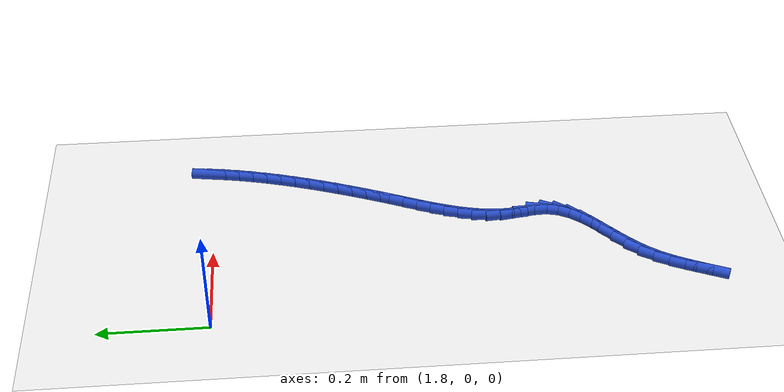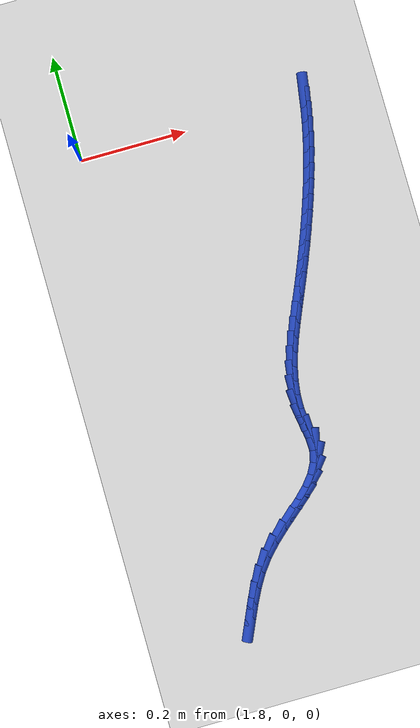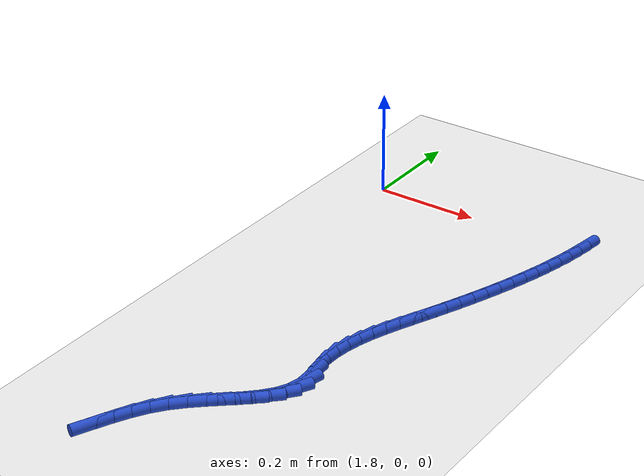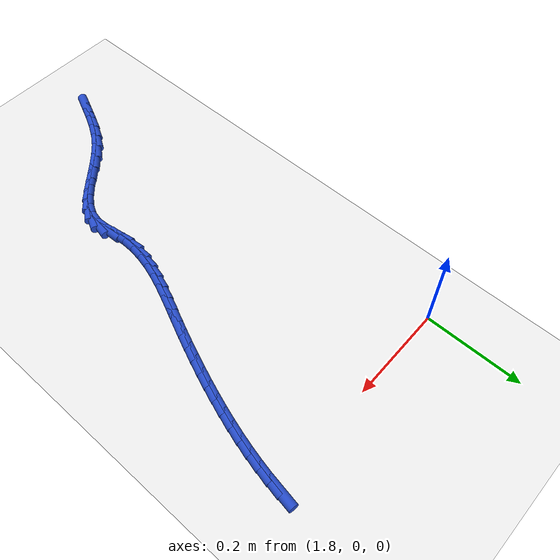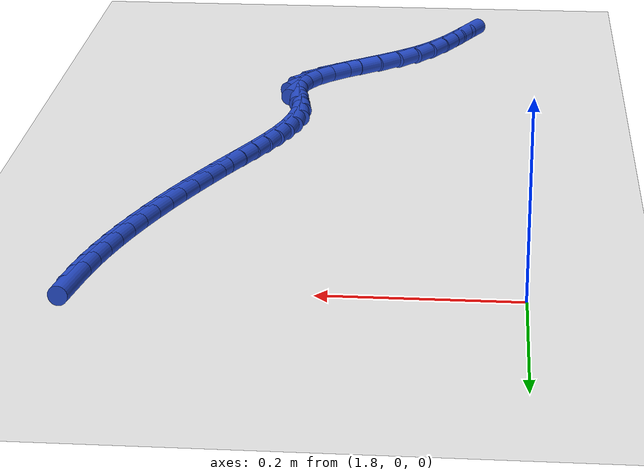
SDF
<sdf version="1.6">
 <world name="default">
  <model name="ground_plane">
   <static>1</static>
   <link name="link">
    <collision name="collision">
     <geometry><plane><normal>0 0 1</normal><size>100 100</size></plane></geometry>
     <surface><friction><ode><mu>100</mu><mu2>50</mu2></ode></friction></surface>
    </collision>
    <visual name="visual">
     <cast_shadows>0</cast_shadows>
     <geometry><plane><normal>0 0 1</normal><size>100 100</size></plane></geometry>
     <material>
      <script><uri>file://media/materials/scripts/gazebo.material</uri><name>Gazebo/WhiteGlow</name></script>
     </material>
    </visual>
   </link>
  </model>
  <model name="line">
   <link name="link_147">
    <pose>2.2294907186792656 0.0048041137044380205 0.01 0 1.57 1.4131329347840345</pose>
    <collision name="collision">
     <geometry><cylinder><radius>0.01</radius><length>0.08</length></cylinder></geometry>
    </collision>
    <visual name="visual">
     <material>
      <script><name>Gazebo/Blue</name><uri>file://media/materials/scripts/gazebo.material</uri></script>
     </material>
     <geometry><cylinder><radius>0.01</radius><length>0.08</length></cylinder></geometry>
    </visual>
   </link>
   <link name="link_148">
    <pose>2.225227168233323 -0.022013553302648974 0.01 0 1.57 1.3787885906824566</pose>
    <collision name="collision">
     <geometry><cylinder><radius>0.01</radius><length>0.08</length></cylinder></geometry>
    </collision>
    <visual name="visual">
     <material>
      <script><name>Gazebo/Blue</name><uri>file://media/materials/scripts/gazebo.material</uri></script>
     </material>
     <geometry><cylinder><radius>0.01</radius><length>0.08</length></cylinder></geometry>
    </visual>
   </link>
   <link name="link_149">
    <pose>2.219970380369202 -0.049054275825945876 0.01 0 1.57 1.3476740435328995</pose>
    <collision name="collision">
     <geometry><cylinder><radius>0.01</radius><length>0.08</length></cylinder></geometry>
    </collision>
    <visual name="visual">
     <material>
      <script><name>Gazebo/Blue</name><uri>file://media/materials/scripts/gazebo.material</uri></script>
     </material>
     <geometry><cylinder><radius>0.01</radius><length>0.08</length></cylinder></geometry>
    </visual>
   </link>
   <link name="link_150">
    <pose>2.213795934489069 -0.07626644915888862 0.01 0 1.57 1.3195082278646784</pose>
    <collision name="collision">
     <geometry><cylinder><radius>0.01</radius><length>0.08</length></cylinder></geometry>
    </collision>
    <visual name="visual">
     <material>
      <script><name>Gazebo/Blue</name><uri>file://media/materials/scripts/gazebo.material</uri></script>
     </material>
     <geometry><cylinder><radius>0.01</radius><length>0.08</length></cylinder></geometry>
    </visual>
   </link>
   <link name="link_151">
    <pose>2.2067794099950913 -0.10359846859491306 0.01 0 1.57 1.2940367109412003</pose>
    <collision name="collision">
     <geometry><cylinder><radius>0.01</radius><length>0.08</length></cylinder></geometry>
    </collision>
    <visual name="visual">
     <material>
      <script><name>Gazebo/Blue</name><uri>file://media/materials/scripts/gazebo.material</uri></script>
     </material>
     <geometry><cylinder><radius>0.01</radius><length>0.08</length></cylinder></geometry>
    </visual>
   </link>
   <link name="link_152">
    <pose>2.198996386289434 -0.1309987294274541 0.01 0 1.57 1.271032584004696</pose>
    <collision name="collision">
     <geometry><cylinder><radius>0.01</radius><length>0.08</length></cylinder></geometry>
    </collision>
    <visual name="visual">
     <material>
      <script><name>Gazebo/Blue</name><uri>file://media/materials/scripts/gazebo.material</uri></script>
     </material>
     <geometry><cylinder><radius>0.01</radius><length>0.08</length></cylinder></geometry>
    </visual>
   </link>
   <link name="link_153">
    <pose>2.1905224427742653 -0.15841562694994948 0.01 0 1.57 1.2502961432900745</pose>
    <collision name="collision">
     <geometry><cylinder><radius>0.01</radius><length>0.08</length></cylinder></geometry>
    </collision>
    <visual name="visual">
     <material>
      <script><name>Gazebo/Blue</name><uri>file://media/materials/scripts/gazebo.material</uri></script>
     </material>
     <geometry><cylinder><radius>0.01</radius><length>0.08</length></cylinder></geometry>
    </visual>
   </link>
   <link name="link_154">
    <pose>2.1814331588517515 -0.18579755645583407 0.01 0 1.57 1.2316539185993123</pose>
    <collision name="collision">
     <geometry><cylinder><radius>0.01</radius><length>0.08</length></cylinder></geometry>
    </collision>
    <visual name="visual">
     <material>
      <script><name>Gazebo/Blue</name><uri>file://media/materials/scripts/gazebo.material</uri></script>
     </material>
     <geometry><cylinder><radius>0.01</radius><length>0.08</length></cylinder></geometry>
    </visual>
   </link>
   <link name="link_155">
    <pose>2.171804113924061 -0.21309291323854382 0.01 0 1.57 1.2149574339901708</pose>
    <collision name="collision">
     <geometry><cylinder><radius>0.01</radius><length>0.08</length></cylinder></geometry>
    </collision>
    <visual name="visual">
     <material>
      <script><name>Gazebo/Blue</name><uri>file://media/materials/scripts/gazebo.material</uri></script>
     </material>
     <geometry><cylinder><radius>0.01</radius><length>0.08</length></cylinder></geometry>
    </visual>
   </link>
   <link name="link_156">
    <pose>2.161710887393358 -0.24025009259151445 0.01 0 1.57 1.200081963238884</pose>
    <collision name="collision">
     <geometry><cylinder><radius>0.01</radius><length>0.08</length></cylinder></geometry>
    </collision>
    <visual name="visual">
     <material>
      <script><name>Gazebo/Blue</name><uri>file://media/materials/scripts/gazebo.material</uri></script>
     </material>
     <geometry><cylinder><radius>0.01</radius><length>0.08</length></cylinder></geometry>
    </visual>
   </link>
   <link name="link_157">
    <pose>2.1512290586618112 -0.26721748980818194 0.01 0 1.57 1.1869254621324785</pose>
    <collision name="collision">
     <geometry><cylinder><radius>0.01</radius><length>0.08</length></cylinder></geometry>
    </collision>
    <visual name="visual">
     <material>
      <script><name>Gazebo/Blue</name><uri>file://media/materials/scripts/gazebo.material</uri></script>
     </material>
     <geometry><cylinder><radius>0.01</radius><length>0.08</length></cylinder></geometry>
    </visual>
   </link>
   <link name="link_158">
    <pose>2.1404342071315874 -0.2939435001819821 0.01 0 1.57 1.1754078111713064</pose>
    <collision name="collision">
     <geometry><cylinder><radius>0.01</radius><length>0.08</length></cylinder></geometry>
    </collision>
    <visual name="visual">
     <material>
      <script><name>Gazebo/Blue</name><uri>file://media/materials/scripts/gazebo.material</uri></script>
     </material>
     <geometry><cylinder><radius>0.01</radius><length>0.08</length></cylinder></geometry>
    </visual>
   </link>
   <link name="link_159">
    <pose>2.1294019122048535 -0.32037651900635084 0.01 0 1.57 1.1654704789290178</pose>
    <collision name="collision">
     <geometry><cylinder><radius>0.01</radius><length>0.08</length></cylinder></geometry>
    </collision>
    <visual name="visual">
     <material>
      <script><name>Gazebo/Blue</name><uri>file://media/materials/scripts/gazebo.material</uri></script>
     </material>
     <geometry><cylinder><radius>0.01</radius><length>0.08</length></cylinder></geometry>
    </visual>
   </link>
   <link name="link_160">
    <pose>2.1182077532837753 -0.346464941574724 0.01 0 1.57 1.1590778142166358</pose>
    <collision name="collision">
     <geometry><cylinder><radius>0.01</radius><length>0.08</length></cylinder></geometry>
    </collision>
    <visual name="visual">
     <material>
      <script><name>Gazebo/Blue</name><uri>file://media/materials/scripts/gazebo.material</uri></script>
     </material>
     <geometry><cylinder><radius>0.01</radius><length>0.08</length></cylinder></geometry>
    </visual>
   </link>
   <link name="link_161">
    <pose>2.106977629930485 -0.37218223865339406 0.01 0 1.57 1.1650571197149426</pose>
    <collision name="collision">
     <geometry><cylinder><radius>0.01</radius><length>0.08</length></cylinder></geometry>
    </collision>
    <visual name="visual">
     <material>
      <script><name>Gazebo/Blue</name><uri>file://media/materials/scripts/gazebo.material</uri></script>
     </material>
     <geometry><cylinder><radius>0.01</radius><length>0.08</length></cylinder></geometry>
    </visual>
   </link>
   <link name="link_162">
    <pose>2.09605448634656 -0.3976100383946567 0.01 0 1.57 1.1863670223299776</pose>
    <collision name="collision">
     <geometry><cylinder><radius>0.01</radius><length>0.08</length></cylinder></geometry>
    </collision>
    <visual name="visual">
     <material>
      <script><name>Gazebo/Blue</name><uri>file://media/materials/scripts/gazebo.material</uri></script>
     </material>
     <geometry><cylinder><radius>0.01</radius><length>0.08</length></cylinder></geometry>
    </visual>
   </link>
   <link name="link_163">
    <pose>2.0858397727250386 -0.42285912357594885 0.01 0 1.57 1.2238486611384698</pose>
    <collision name="collision">
     <geometry><cylinder><radius>0.01</radius><length>0.08</length></cylinder></geometry>
    </collision>
    <visual name="visual">
     <material>
      <script><name>Gazebo/Blue</name><uri>file://media/materials/scripts/gazebo.material</uri></script>
     </material>
     <geometry><cylinder><radius>0.01</radius><length>0.08</length></cylinder></geometry>
    </visual>
   </link>
   <link name="link_164">
    <pose>2.076734940120383 -0.44804027740397256 0.01 0 1.57 1.278383283045282</pose>
    <collision name="collision">
     <geometry><cylinder><radius>0.01</radius><length>0.08</length></cylinder></geometry>
    </collision>
    <visual name="visual">
     <material>
      <script><name>Gazebo/Blue</name><uri>file://media/materials/scripts/gazebo.material</uri></script>
     </material>
     <geometry><cylinder><radius>0.01</radius><length>0.08</length></cylinder></geometry>
    </visual>
   </link>
   <link name="link_165">
    <pose>2.0691414395870598 -0.47326428308543006 0.01 0 1.57 1.3505792720783232</pose>
    <collision name="collision">
     <geometry><cylinder><radius>0.01</radius><length>0.08</length></cylinder></geometry>
    </collision>
    <visual name="visual">
     <material>
      <script><name>Gazebo/Blue</name><uri>file://media/materials/scripts/gazebo.material</uri></script>
     </material>
     <geometry><cylinder><radius>0.01</radius><length>0.08</length></cylinder></geometry>
    </visual>
   </link>
   <link name="link_166">
    <pose>2.0634607221795322 -0.49864192382702316 0.01 0 1.57 1.4402553750472191</pose>
    <collision name="collision">
     <geometry><cylinder><radius>0.01</radius><length>0.08</length></cylinder></geometry>
    </collision>
    <visual name="visual">
     <material>
      <script><name>Gazebo/Blue</name><uri>file://media/materials/scripts/gazebo.material</uri></script>
     </material>
     <geometry><cylinder><radius>0.01</radius><length>0.08</length></cylinder></geometry>
    </visual>
   </link>
   <link name="link_167">
    <pose>2.0600942389522654 -0.524283982835454 0.01 0 1.57 1.5457874559268951</pose>
    <collision name="collision">
     <geometry><cylinder><radius>0.01</radius><length>0.08</length></cylinder></geometry>
    </collision>
    <visual name="visual">
     <material>
      <script><name>Gazebo/Blue</name><uri>file://media/materials/scripts/gazebo.material</uri></script>
     </material>
     <geometry><cylinder><radius>0.01</radius><length>0.08</length></cylinder></geometry>
    </visual>
   </link>
   <link name="link_168">
    <pose>2.0594434409597238 -0.5503012433174244 0.01 0 1.57 -1.478311323004696</pose>
    <collision name="collision">
     <geometry><cylinder><radius>0.01</radius><length>0.08</length></cylinder></geometry>
    </collision>
    <visual name="visual">
     <material>
      <script><name>Gazebo/Blue</name><uri>file://media/materials/scripts/gazebo.material</uri></script>
     </material>
     <geometry><cylinder><radius>0.01</radius><length>0.08</length></cylinder></geometry>
    </visual>
   </link>
   <link name="link_169">
    <pose>2.06190137067561 -0.5768019479557994 0.01 0 1.57 -1.4110155421803283</pose>
    <collision name="collision">
     <geometry><cylinder><radius>0.01</radius><length>0.08</length></cylinder></geometry>
    </collision>
    <visual name="visual">
     <material>
      <script><name>Gazebo/Blue</name><uri>file://media/materials/scripts/gazebo.material</uri></script>
     </material>
     <geometry><cylinder><radius>0.01</radius><length>0.08</length></cylinder></geometry>
    </visual>
   </link>
   <link name="link_170">
    <pose>2.0661858663517667 -0.6033882021462162 0.01 0 1.57 -1.5247663358744423</pose>
    <collision name="collision">
     <geometry><cylinder><radius>0.01</radius><length>0.08</length></cylinder></geometry>
    </collision>
    <visual name="visual">
     <material>
      <script><name>Gazebo/Blue</name><uri>file://media/materials/scripts/gazebo.material</uri></script>
     </material>
     <geometry><cylinder><radius>0.01</radius><length>0.08</length></cylinder></geometry>
    </visual>
   </link>
   <link name="link_171">
    <pose>2.0673450645026983 -0.628553954398634 0.01 0 1.57 1.3410595583480414</pose>
    <collision name="collision">
     <geometry><cylinder><radius>0.01</radius><length>0.08</length></cylinder></geometry>
    </collision>
    <visual name="visual">
     <material>
      <script><name>Gazebo/Blue</name><uri>file://media/materials/scripts/gazebo.material</uri></script>
     </material>
     <geometry><cylinder><radius>0.01</radius><length>0.08</length></cylinder></geometry>
    </visual>
   </link>
   <link name="link_172">
    <pose>2.0620145857142256 -0.6513468582196256 0.01 0 1.57 1.0814564118400627</pose>
    <collision name="collision">
     <geometry><cylinder><radius>0.01</radius><length>0.08</length></cylinder></geometry>
    </collision>
    <visual name="visual">
     <material>
      <script><name>Gazebo/Blue</name><uri>file://media/materials/scripts/gazebo.material</uri></script>
     </material>
     <geometry><cylinder><radius>0.01</radius><length>0.08</length></cylinder></geometry>
    </visual>
   </link>
   <link name="link_173">
    <pose>2.050912837034157 -0.6721936245232542 0.01 0 1.57 0.8932889657081668</pose>
    <collision name="collision">
     <geometry><cylinder><radius>0.01</radius><length>0.08</length></cylinder></geometry>
    </collision>
    <visual name="visual">
     <material>
      <script><name>Gazebo/Blue</name><uri>file://media/materials/scripts/gazebo.material</uri></script>
     </material>
     <geometry><cylinder><radius>0.01</radius><length>0.08</length></cylinder></geometry>
    </visual>
   </link>
   <link name="link_174">
    <pose>2.0352338347666104 -0.6916816124656829 0.01 0 1.57 0.7762485585490281</pose>
    <collision name="collision">
     <geometry><cylinder><radius>0.01</radius><length>0.08</length></cylinder></geometry>
    </collision>
    <visual name="visual">
     <material>
      <script><name>Gazebo/Blue</name><uri>file://media/materials/scripts/gazebo.material</uri></script>
     </material>
     <geometry><cylinder><radius>0.01</radius><length>0.08</length></cylinder></geometry>
    </visual>
   </link>
   <link name="link_175">
    <pose>2.016171595215707 -0.7103981812030754 0.01 0 1.57 0.7171613701482389</pose>
    <collision name="collision">
     <geometry><cylinder><radius>0.01</radius><length>0.08</length></cylinder></geometry>
    </collision>
    <visual name="visual">
     <material>
      <script><name>Gazebo/Blue</name><uri>file://media/materials/scripts/gazebo.material</uri></script>
     </material>
     <geometry><cylinder><radius>0.01</radius><length>0.08</length></cylinder></geometry>
    </visual>
   </link>
   <link name="link_176">
    <pose>1.9949201346855654 -0.7289306898915947 0.01 0 1.57 0.7051758830794571</pose>
    <collision name="collision">
     <geometry><cylinder><radius>0.01</radius><length>0.08</length></cylinder></geometry>
    </collision>
    <visual name="visual">
     <material>
      <script><name>Gazebo/Blue</name><uri>file://media/materials/scripts/gazebo.material</uri></script>
     </material>
     <geometry><cylinder><radius>0.01</radius><length>0.08</length></cylinder></geometry>
    </visual>
   </link>
   <link name="link_177">
    <pose>1.972673469480306 -0.7478664976874043 0.01 0 1.57 0.7349010004834948</pose>
    <collision name="collision">
     <geometry><cylinder><radius>0.01</radius><length>0.08</length></cylinder></geometry>
    </collision>
    <visual name="visual">
     <material>
      <script><name>Gazebo/Blue</name><uri>file://media/materials/scripts/gazebo.material</uri></script>
     </material>
     <geometry><cylinder><radius>0.01</radius><length>0.08</length></cylinder></geometry>
    </visual>
   </link>
   <link name="link_178">
    <pose>1.9506256159040471 -0.7677929637466672 0.01 0 1.57 0.8055441027198454</pose>
    <collision name="collision">
     <geometry><cylinder><radius>0.01</radius><length>0.08</length></cylinder></geometry>
    </collision>
    <visual name="visual">
     <material>
      <script><name>Gazebo/Blue</name><uri>file://media/materials/scripts/gazebo.material</uri></script>
     </material>
     <geometry><cylinder><radius>0.01</radius><length>0.08</length></cylinder></geometry>
    </visual>
   </link>
   <link name="link_179">
    <pose>1.9299705902609101 -0.7892974472255474 0.01 0 1.57 0.915528964030494</pose>
    <collision name="collision">
     <geometry><cylinder><radius>0.01</radius><length>0.08</length></cylinder></geometry>
    </collision>
    <visual name="visual">
     <material>
      <script><name>Gazebo/Blue</name><uri>file://media/materials/scripts/gazebo.material</uri></script>
     </material>
     <geometry><cylinder><radius>0.01</radius><length>0.08</length></cylinder></geometry>
    </visual>
   </link>
   <link name="link_180">
    <pose>1.9118250053756354 -0.8129076234579806 0.01 0 1.57 1.022201765656534</pose>
    <collision name="collision">
     <geometry><cylinder><radius>0.01</radius><length>0.08</length></cylinder></geometry>
    </collision>
    <visual name="visual">
     <material>
      <script><name>Gazebo/Blue</name><uri>file://media/materials/scripts/gazebo.material</uri></script>
     </material>
     <geometry><cylinder><radius>0.01</radius><length>0.08</length></cylinder></geometry>
    </visual>
   </link>
   <link name="link_181">
    <pose>1.8962724695827828 -0.8383546447165734 0.01 0 1.57 1.0954906879583788</pose>
    <collision name="collision">
     <geometry><cylinder><radius>0.01</radius><length>0.08</length></cylinder></geometry>
    </collision>
    <visual name="visual">
     <material>
      <script><name>Gazebo/Blue</name><uri>file://media/materials/scripts/gazebo.material</uri></script>
     </material>
     <geometry><cylinder><radius>0.01</radius><length>0.08</length></cylinder></geometry>
    </visual>
   </link>
   <link name="link_182">
    <pose>1.8826609059955821 -0.8648023954157191 0.01 0 1.57 1.1364861053539608</pose>
    <collision name="collision">
     <geometry><cylinder><radius>0.01</radius><length>0.08</length></cylinder></geometry>
    </collision>
    <visual name="visual">
     <material>
      <script><name>Gazebo/Blue</name><uri>file://media/materials/scripts/gazebo.material</uri></script>
     </material>
     <geometry><cylinder><radius>0.01</radius><length>0.08</length></cylinder></geometry>
    </visual>
   </link>
   <link name="link_183">
    <pose>1.8703224540109824 -0.8914025895541653 0.01 0 1.57 1.1454974959111388</pose>
    <collision name="collision">
     <geometry><cylinder><radius>0.01</radius><length>0.08</length></cylinder></geometry>
    </collision>
    <visual name="visual">
     <material>
      <script><name>Gazebo/Blue</name><uri>file://media/materials/scripts/gazebo.material</uri></script>
     </material>
     <geometry><cylinder><radius>0.01</radius><length>0.08</length></cylinder></geometry>
    </visual>
   </link>
  </model>
 </world>
</sdf>
